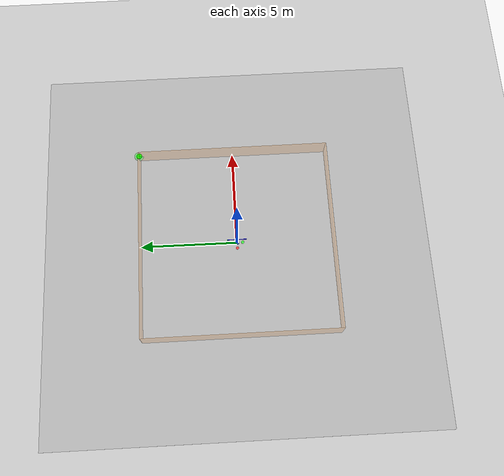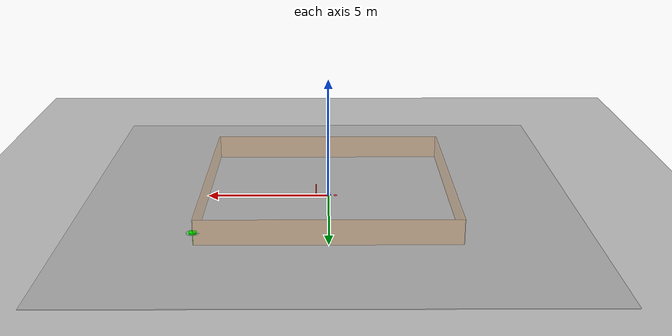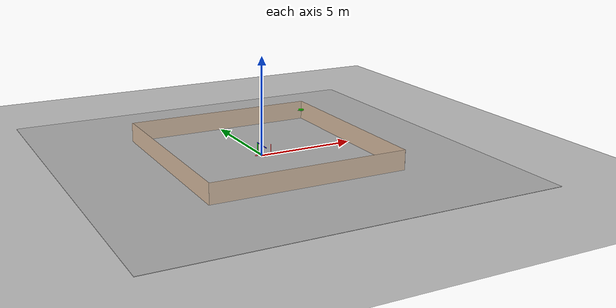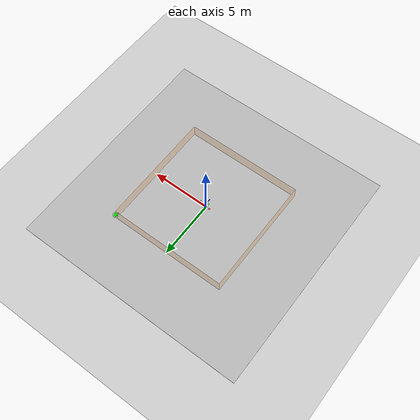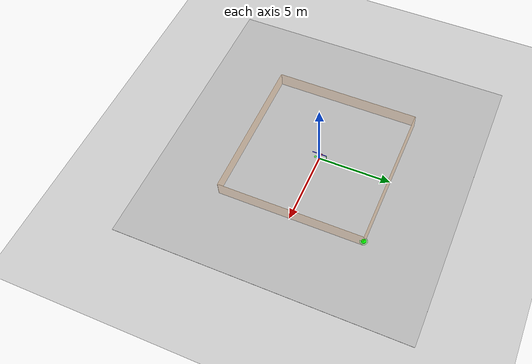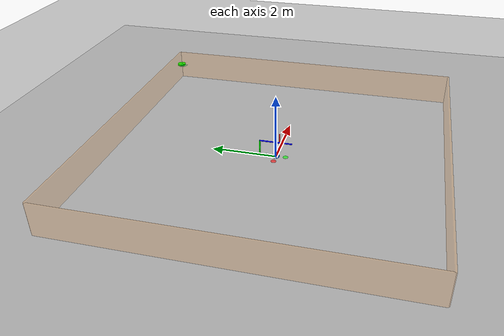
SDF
<?xml version="1.0"?>
<sdf version="1.6">
  <world name="formation_demo_world">

    <!-- Physics Configuration for Accurate Simulation -->
    <physics type="ode">
      <max_step_size>0.001</max_step_size>
      <real_time_factor>1.0</real_time_factor>
      <real_time_update_rate>1000</real_time_update_rate>
      <ode>
        <solver>
          <type>quick</type>
          <iters>50</iters>
          <sor>1.3</sor>
        </solver>
        <constraints>
          <cfm>0.0</cfm>
          <erp>0.2</erp>
          <contact_max_correcting_vel>100.0</contact_max_correcting_vel>
          <contact_surface_layer>0.001</contact_surface_layer>
        </constraints>
      </ode>
    </physics>

    <!-- Scene Lighting -->
    <scene>
      <ambient>0.5 0.5 0.5 1</ambient>
      <background>0.7 0.8 0.9 1</background>
      <shadows>true</shadows>
      <grid>true</grid>
    </scene>

    <!-- Sun (Primary Light Source) -->
    <light name="sun" type="directional">
      <pose>5 5 15 0 0 0</pose>
      <diffuse>0.9 0.9 0.9 1</diffuse>
      <specular>0.3 0.3 0.3 1</specular>
      <direction>-0.5 -0.5 -0.9</direction>
      <cast_shadows>true</cast_shadows>
    </light>

    <!-- Ambient Fill Light -->
    <light name="ambient_light" type="point">
      <pose>-5 -5 5 0 0 0</pose>
      <diffuse>0.3 0.3 0.3 1</diffuse>
      <specular>0.1 0.1 0.1 1</specular>
      <attenuation>
        <range>50</range>
        <linear>0.01</linear>
        <constant>0.5</constant>
        <quadratic>0.001</quadratic>
      </attenuation>
      <cast_shadows>false</cast_shadows>
    </light>

    <!-- Professional Grid Ground Plane -->
    <model name="ground_plane">
      <static>true</static>
      <link name="link">
        <collision name="collision">
          <geometry>
            <plane>
              <normal>0 0 1</normal>
              <size>50 50</size>
            </plane>
          </geometry>
          <surface>
            <friction>
              <ode>
                <mu>100</mu>
                <mu2>50</mu2>
              </ode>
            </friction>
          </surface>
        </collision>
        <visual name="visual">
          <cast_shadows>false</cast_shadows>
          <geometry>
            <plane>
              <normal>0 0 1</normal>
              <size>50 50</size>
            </plane>
          </geometry>
          <material>
            <script>
              <uri>file://media/materials/scripts/gazebo.material</uri>
              <name>Gazebo/Grey</name>
            </script>
          </material>
        </visual>
      </link>
    </model>

    <!-- Origin Marker (World Coordinate Frame) -->
    <model name="origin_marker">
      <pose>0 0 0.01 0 0 0</pose>
      <static>true</static>
      <!-- X Axis (Red) -->
      <link name="x_axis">
        <visual name="x_arrow">
          <pose>0.5 0 0 0 0 0</pose>
          <geometry>
            <cylinder>
              <radius>0.02</radius>
              <length>1.0</length>
            </cylinder>
          </geometry>
          <material>
            <ambient>1 0 0 1</ambient>
            <diffuse>1 0 0 1</diffuse>
            <emissive>0.5 0 0 1</emissive>
          </material>
        </visual>
      </link>
      <!-- Y Axis (Green) -->
      <link name="y_axis">
        <visual name="y_arrow">
          <pose>0 0.5 0 0 0 1.5708</pose>
          <geometry>
            <cylinder>
              <radius>0.02</radius>
              <length>1.0</length>
            </cylinder>
          </geometry>
          <material>
            <ambient>0 1 0 1</ambient>
            <diffuse>0 1 0 1</diffuse>
            <emissive>0 0.5 0 1</emissive>
          </material>
        </visual>
      </link>
      <!-- Z Axis (Blue) -->
      <link name="z_axis">
        <visual name="z_arrow">
          <pose>0 0 0.5 1.5708 0 0</pose>
          <geometry>
            <cylinder>
              <radius>0.02</radius>
              <length>1.0</length>
            </cylinder>
          </geometry>
          <material>
            <ambient>0 0 1 1</ambient>
            <diffuse>0 0 1 1</diffuse>
            <emissive>0 0 0.5 1</emissive>
          </material>
        </visual>
      </link>
    </model>

    <!-- Reference Grid Lines (1m spacing) -->
    <model name="grid_lines">
      <pose>0 0 0.005 0 0 0</pose>
      <static>true</static>
      <link name="link">
        <!-- Grid lines visual representation -->
        <visual name="grid">
          <geometry>
            <plane>
              <normal>0 0 1</normal>
              <size>20 20</size>
            </plane>
          </geometry>
          <material>
            <script>
              <uri>model://grid_plane/materials/scripts</uri>
              <uri>model://grid_plane/materials/textures</uri>
              <name>GridPlane/Grid</name>
            </script>
          </material>
        </visual>
      </link>
    </model>

    <!-- Scale Reference Markers (1m, 2m, 5m circles) -->
    <model name="scale_1m">
      <pose>0 0 0.01 0 0 0</pose>
      <static>true</static>
      <link name="link">
        <visual name="circle">
          <geometry>
            <cylinder>
              <radius>1.0</radius>
              <length>0.005</length>
            </cylinder>
          </geometry>
          <material>
            <ambient>0.8 0.8 0.8 0.3</ambient>
            <diffuse>0.8 0.8 0.8 0.3</diffuse>
          </material>
        </visual>
      </link>
    </model>

    <model name="scale_2m">
      <pose>0 0 0.01 0 0 0</pose>
      <static>true</static>
      <link name="link">
        <visual name="circle">
          <geometry>
            <cylinder>
              <radius>2.0</radius>
              <length>0.005</length>
            </cylinder>
          </geometry>
          <material>
            <ambient>0.7 0.7 0.7 0.2</ambient>
            <diffuse>0.7 0.7 0.7 0.2</diffuse>
          </material>
        </visual>
      </link>
    </model>

    <model name="scale_5m">
      <pose>0 0 0.01 0 0 0</pose>
      <static>true</static>
      <link name="link">
        <visual name="circle">
          <geometry>
            <cylinder>
              <radius>5.0</radius>
              <length>0.005</length>
            </cylinder>
          </geometry>
          <material>
            <ambient>0.6 0.6 0.6 0.15</ambient>
            <diffuse>0.6 0.6 0.6 0.15</diffuse>
          </material>
        </visual>
      </link>
    </model>

    <!-- Quadrotor Drone Model (Agent 0) -->
    <model name="agent_0">
      <pose>0 0 0 0 0 0</pose>
      <static>false</static>

      <link name="base_link">
        <inertial>
          <mass>1.5</mass>
          <inertia>
            <ixx>0.03</ixx>
            <iyy>0.03</iyy>
            <izz>0.05</izz>
          </inertia>
        </inertial>

        <!-- Central Body (Sphere) -->
        <visual name="body">
          <geometry>
            <sphere>
              <radius>0.12</radius>
            </sphere>
          </geometry>
          <material>
            <ambient>0.1 0.3 0.8 1</ambient>
            <diffuse>0.1 0.4 0.9 1</diffuse>
            <specular>0.8 0.8 0.8 1</specular>
          </material>
        </visual>

        <!-- Quadrotor Arms (X Configuration) -->
        <visual name="arm_x_positive">
          <pose>0.15 0 0 0 1.5708 0</pose>
          <geometry>
            <cylinder>
              <radius>0.015</radius>
              <length>0.3</length>
            </cylinder>
          </geometry>
          <material>
            <ambient>0.05 0.05 0.05 1</ambient>
            <diffuse>0.1 0.1 0.1 1</diffuse>
          </material>
        </visual>
        <visual name="arm_x_negative">
          <pose>-0.15 0 0 0 1.5708 0</pose>
          <geometry>
            <cylinder>
              <radius>0.015</radius>
              <length>0.3</length>
            </cylinder>
          </geometry>
          <material>
            <ambient>0.05 0.05 0.05 1</ambient>
            <diffuse>0.1 0.1 0.1 1</diffuse>
          </material>
        </visual>
        <visual name="arm_y_positive">
          <pose>0 0.15 0 1.5708 0 0</pose>
          <geometry>
            <cylinder>
              <radius>0.015</radius>
              <length>0.3</length>
            </cylinder>
          </geometry>
          <material>
            <ambient>0.05 0.05 0.05 1</ambient>
            <diffuse>0.1 0.1 0.1 1</diffuse>
          </material>
        </visual>
        <visual name="arm_y_negative">
          <pose>0 -0.15 0 1.5708 0 0</pose>
          <geometry>
            <cylinder>
              <radius>0.015</radius>
              <length>0.3</length>
            </cylinder>
          </geometry>
          <material>
            <ambient>0.05 0.05 0.05 1</ambient>
            <diffuse>0.1 0.1 0.1 1</diffuse>
          </material>
        </visual>

        <!-- Rotor Discs (Color-coded for orientation) -->
        <!-- Front (Red) -->
        <visual name="rotor_front">
          <pose>0.3 0 0.03 0 0 0</pose>
          <geometry>
            <cylinder>
              <radius>0.08</radius>
              <length>0.01</length>
            </cylinder>
          </geometry>
          <material>
            <ambient>0.9 0.1 0.1 0.8</ambient>
            <diffuse>1.0 0.2 0.2 0.8</diffuse>
            <emissive>0.3 0 0 1</emissive>
          </material>
        </visual>
        <!-- Back (Red) -->
        <visual name="rotor_back">
          <pose>-0.3 0 0.03 0 0 0</pose>
          <geometry>
            <cylinder>
              <radius>0.08</radius>
              <length>0.01</length>
            </cylinder>
          </geometry>
          <material>
            <ambient>0.9 0.1 0.1 0.8</ambient>
            <diffuse>1.0 0.2 0.2 0.8</diffuse>
            <emissive>0.3 0 0 1</emissive>
          </material>
        </visual>
        <!-- Left (Green) -->
        <visual name="rotor_left">
          <pose>0 0.3 0.03 0 0 0</pose>
          <geometry>
            <cylinder>
              <radius>0.08</radius>
              <length>0.01</length>
            </cylinder>
          </geometry>
          <material>
            <ambient>0.1 0.9 0.1 0.8</ambient>
            <diffuse>0.2 1.0 0.2 0.8</diffuse>
            <emissive>0 0.3 0 1</emissive>
          </material>
        </visual>
        <!-- Right (Green) -->
        <visual name="rotor_right">
          <pose>0 -0.3 0.03 0 0 0</pose>
          <geometry>
            <cylinder>
              <radius>0.08</radius>
              <length>0.01</length>
            </cylinder>
          </geometry>
          <material>
            <ambient>0.1 0.9 0.1 0.8</ambient>
            <diffuse>0.2 1.0 0.2 0.8</diffuse>
            <emissive>0 0.3 0 1</emissive>
          </material>
        </visual>

        <!-- Direction Indicator (Front arrow) -->
        <visual name="direction_indicator">
          <pose>0.35 0 0 0 0 0</pose>
          <geometry>
            <box>
              <size>0.1 0.02 0.02</size>
            </box>
          </geometry>
          <material>
            <ambient>1 1 0 1</ambient>
            <diffuse>1 1 0 1</diffuse>
            <emissive>0.5 0.5 0 1</emissive>
          </material>
        </visual>

        <!-- Collision Geometry (Simplified) -->
        <collision name="collision">
          <geometry>
            <sphere>
              <radius>0.2</radius>
            </sphere>
          </geometry>
        </collision>
      </link>

      <!-- Gazebo Physics Plugin for ROS2 Integration -->
      <plugin name="simple_drone_plugin" filename="libsimple_drone_plugin.so">
        <namespace>agent_0</namespace>
      </plugin>
    </model>

    <!-- Target Position Marker (Glowing Cylinder) -->
    <model name="target_marker">
      <pose>5 5 0.5 0 0 0</pose>
      <static>true</static>
      <link name="link">
        <!-- Main Target Disc -->
        <visual name="target_disc">
          <geometry>
            <cylinder>
              <radius>0.15</radius>
              <length>0.05</length>
            </cylinder>
          </geometry>
          <material>
            <ambient>0 1 0 1</ambient>
            <diffuse>0 1 0 1</diffuse>
            <emissive>0 0.5 0 1</emissive>
          </material>
        </visual>
        <!-- Target Glow Halo -->
        <visual name="target_halo">
          <pose>0 0 0 0 0 0</pose>
          <geometry>
            <cylinder>
              <radius>0.25</radius>
              <length>0.01</length>
            </cylinder>
          </geometry>
          <material>
            <ambient>0 1 0 0.3</ambient>
            <diffuse>0 1 0 0.3</diffuse>
            <emissive>0 0.3 0 0.5</emissive>
          </material>
        </visual>
        <!-- Vertical Beam (Visibility Aid) -->
        <visual name="target_beam">
          <pose>0 0 -0.25 0 0 0</pose>
          <geometry>
            <cylinder>
              <radius>0.02</radius>
              <length>0.5</length>
            </cylinder>
          </geometry>
          <material>
            <ambient>0 1 0 0.5</ambient>
            <diffuse>0 1 0 0.5</diffuse>
            <emissive>0 0.3 0 0.5</emissive>
          </material>
        </visual>
      </link>
    </model>

    <!-- Workspace Boundaries (Visual Only) -->
    <model name="workspace_boundary">
      <pose>0 0 0.5 0 0 0</pose>
      <static>true</static>
      <link name="link">
        <!-- 10m x 10m workspace visualization -->
        <visual name="boundary_x_positive">
          <pose>5 0 0 0 0 0</pose>
          <geometry>
            <box>
              <size>0.05 10 1</size>
            </box>
          </geometry>
          <material>
            <ambient>1 0.5 0 0.2</ambient>
            <diffuse>1 0.5 0 0.2</diffuse>
          </material>
        </visual>
        <visual name="boundary_x_negative">
          <pose>-5 0 0 0 0 0</pose>
          <geometry>
            <box>
              <size>0.05 10 1</size>
            </box>
          </geometry>
          <material>
            <ambient>1 0.5 0 0.2</ambient>
            <diffuse>1 0.5 0 0.2</diffuse>
          </material>
        </visual>
        <visual name="boundary_y_positive">
          <pose>0 5 0 0 0 0</pose>
          <geometry>
            <box>
              <size>10 0.05 1</size>
            </box>
          </geometry>
          <material>
            <ambient>1 0.5 0 0.2</ambient>
            <diffuse>1 0.5 0 0.2</diffuse>
          </material>
        </visual>
        <visual name="boundary_y_negative">
          <pose>0 -5 0 0 0 0</pose>
          <geometry>
            <box>
              <size>10 0.05 1</size>
            </box>
          </geometry>
          <material>
            <ambient>1 0.5 0 0.2</ambient>
            <diffuse>1 0.5 0 0.2</diffuse>
          </material>
        </visual>
      </link>
    </model>

    <!-- GUI Configuration -->
    <gui fullscreen='0'>
      <camera name='user_camera'>
        <pose>-8 -8 10 0 0.6 0.785</pose>
        <view_controller>orbit</view_controller>
        <projection_type>perspective</projection_type>
      </camera>
    </gui>

  </world>
</sdf>
